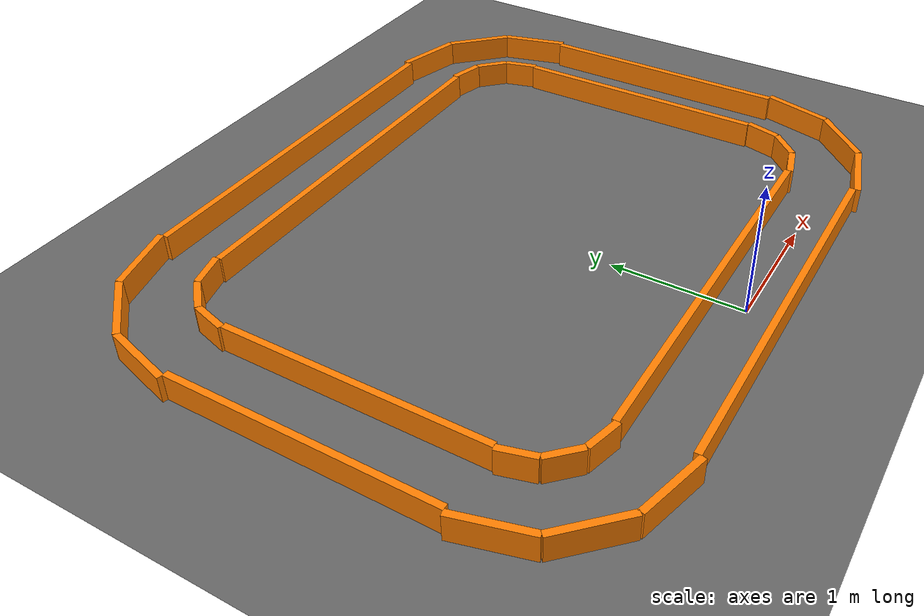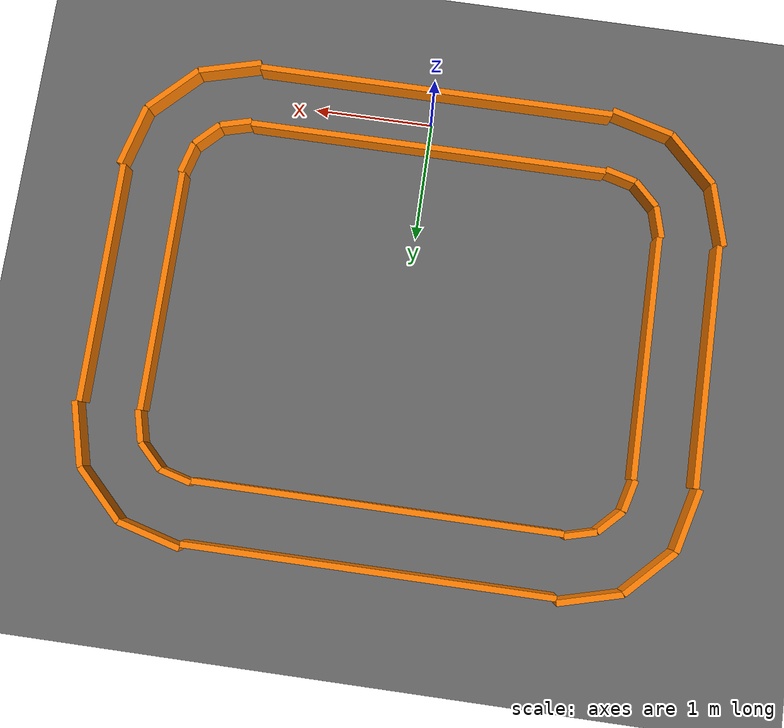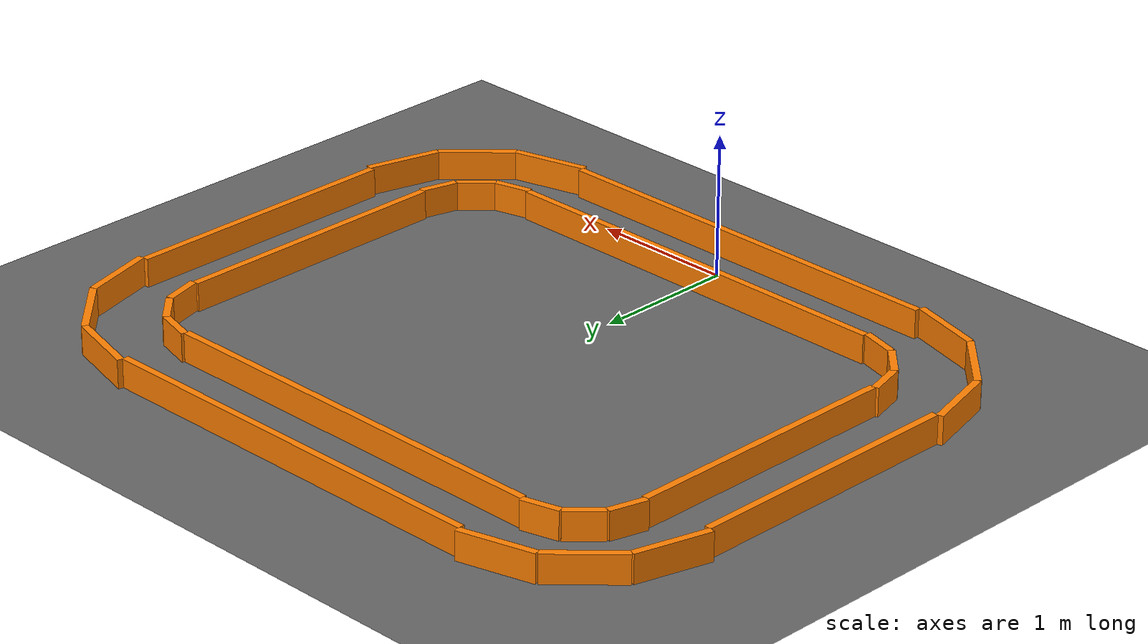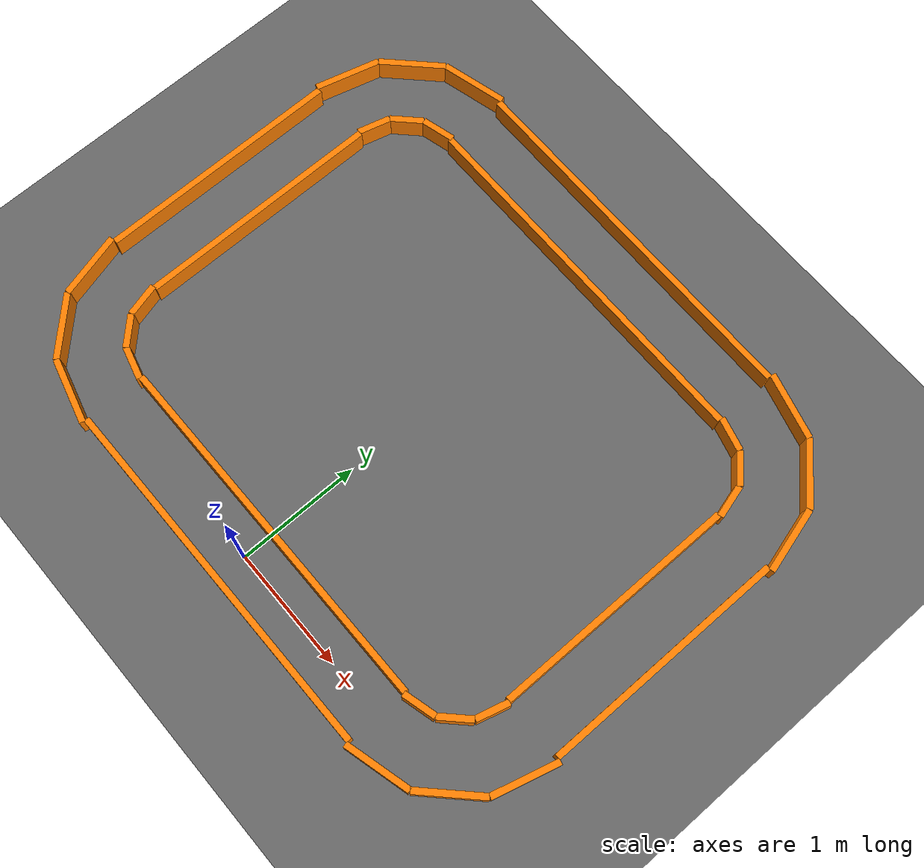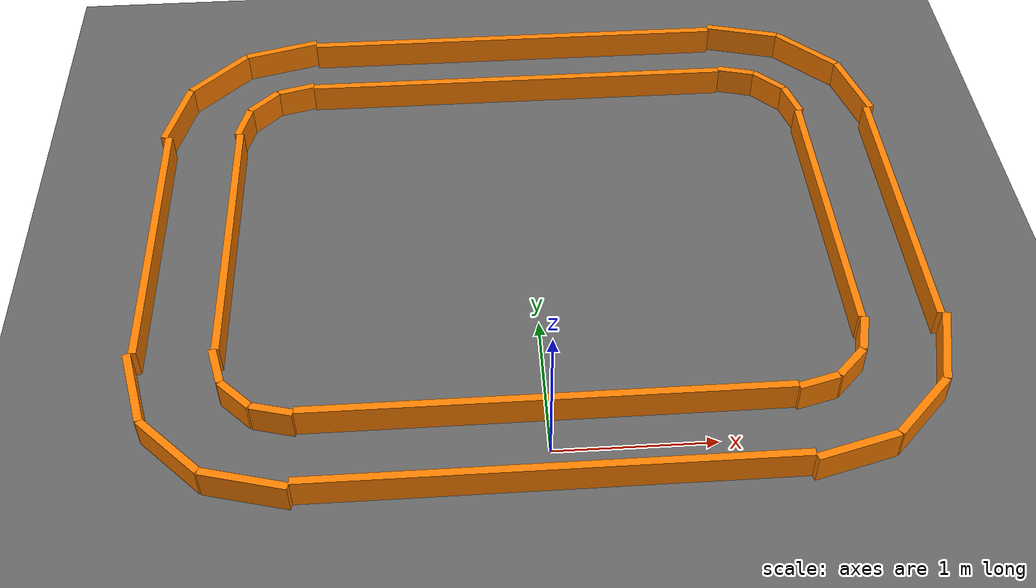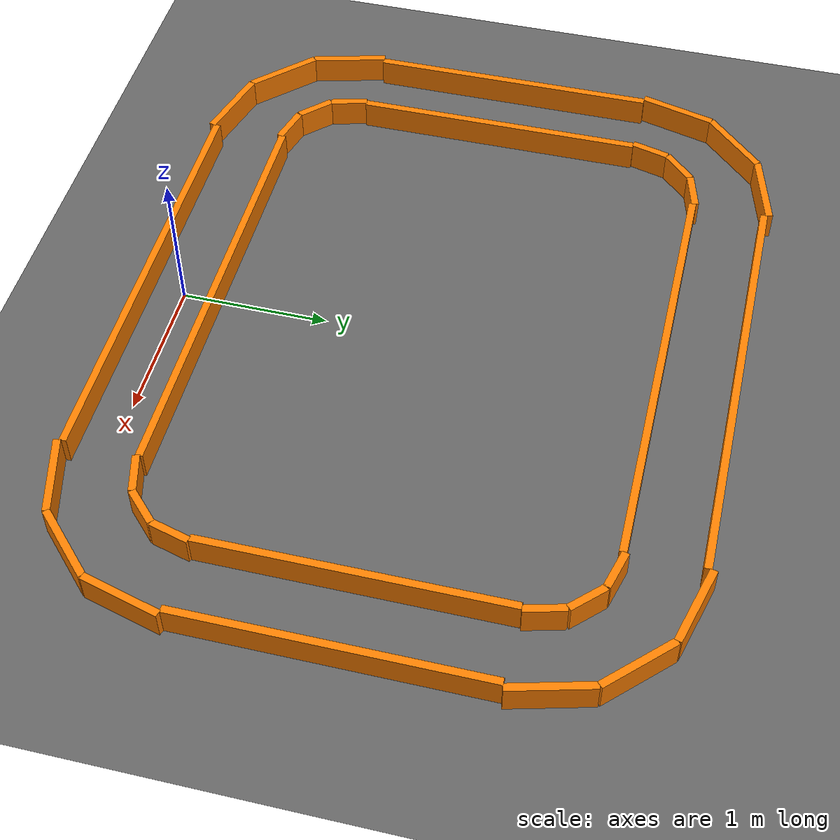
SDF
<?xml version="1.0" ?>
<sdf version="1.9">
  <world name="city_track">
    <!-- Required Physics and Render Plugins for Modern Gazebo -->
    <physics name="1ms" type="ignored">
      <max_step_size>0.001</max_step_size>
      <real_time_factor>1.0</real_time_factor>
    </physics>
    <plugin filename="gz-sim-physics-system" name="gz::sim::systems::Physics" />
    <plugin filename="gz-sim-user-commands-system" name="gz::sim::systems::UserCommands" />
    <plugin filename="gz-sim-scene-broadcaster-system" name="gz::sim::systems::SceneBroadcaster" />

    <light type="directional" name="sun">
      <cast_shadows>true</cast_shadows>
      <pose>0 3.5 10 0 0 0</pose>
      <diffuse>0.8 0.8 0.8 1</diffuse>
      <specular>0.2 0.2 0.2 1</specular>
      <direction>-0.5 0.1 -0.9</direction>
    </light>

    <model name="ground_plane">
      <static>true</static>
      <link name="link">
        <collision name="collision">
          <geometry><plane><normal>0 0 1</normal><size>20 20</size></plane></geometry>
        </collision>
        <visual name="visual">
          <geometry><plane><normal>0 0 1</normal><size>20 20</size></plane></geometry>
          <material>
            <ambient>0.4 0.4 0.4 1</ambient>
            <diffuse>0.4 0.4 0.4 1</diffuse>
          </material>
        </visual>
      </link>
    </model>

    <!-- Track 03: City Track (5m x 4m Outer, 4m x 3m Inner) -->
    <!-- SHIFTED: All Y coords += 1.75 so vehicle starts at (0, 0) on bottom straight (CCW left turns) -->
    <model name="city_track_map">
      <static>true</static>

      <!-- ================= STRAIGHT SECTIONS ================= -->

      <!-- Top and Bottom Straights (Length: 3m) -->
      <!-- Original: top_outer Y=2.0, top_inner Y=1.5, bottom_outer Y=-2.0, bottom_inner Y=-1.5 -->
      <!-- Shifted:  bottom_outer Y=-0.25, bottom_inner Y=0.25, top_outer Y=3.75, top_inner Y=3.25 -->
      <link name="top_outer"><pose>0 3.75 0.1 0 0 0</pose><visual name="v"><geometry><box><size>3.0 0.05 0.2</size></box></geometry><material><ambient>1 0.5 0 1</ambient></material></visual><collision name="c"><geometry><box><size>3.0 0.05 0.2</size></box></geometry></collision></link>
      <link name="top_inner"><pose>0 3.25 0.1 0 0 0</pose><visual name="v"><geometry><box><size>3.0 0.05 0.2</size></box></geometry><material><ambient>1 0.5 0 1</ambient></material></visual><collision name="c"><geometry><box><size>3.0 0.05 0.2</size></box></geometry></collision></link>

      <link name="bottom_outer"><pose>0 -0.25 0.1 0 0 0</pose><visual name="v"><geometry><box><size>3.0 0.05 0.2</size></box></geometry><material><ambient>1 0.5 0 1</ambient></material></visual><collision name="c"><geometry><box><size>3.0 0.05 0.2</size></box></geometry></collision></link>
      <link name="bottom_inner"><pose>0 0.25 0.1 0 0 0</pose><visual name="v"><geometry><box><size>3.0 0.05 0.2</size></box></geometry><material><ambient>1 0.5 0 1</ambient></material></visual><collision name="c"><geometry><box><size>3.0 0.05 0.2</size></box></geometry></collision></link>

      <!-- Left and Right Straights (Length: 2m) -->
      <!-- Original: Y=0, Shifted: Y=1.75 -->
      <link name="right_outer"><pose>2.5 1.75 0.1 0 0 1.5708</pose><visual name="v"><geometry><box><size>2.0 0.05 0.2</size></box></geometry><material><ambient>1 0.5 0 1</ambient></material></visual><collision name="c"><geometry><box><size>2.0 0.05 0.2</size></box></geometry></collision></link>
      <link name="right_inner"><pose>2.0 1.75 0.1 0 0 1.5708</pose><visual name="v"><geometry><box><size>2.0 0.05 0.2</size></box></geometry><material><ambient>1 0.5 0 1</ambient></material></visual><collision name="c"><geometry><box><size>2.0 0.05 0.2</size></box></geometry></collision></link>

      <link name="left_outer"><pose>-2.5 1.75 0.1 0 0 1.5708</pose><visual name="v"><geometry><box><size>2.0 0.05 0.2</size></box></geometry><material><ambient>1 0.5 0 1</ambient></material></visual><collision name="c"><geometry><box><size>2.0 0.05 0.2</size></box></geometry></collision></link>
      <link name="left_inner"><pose>-2.0 1.75 0.1 0 0 1.5708</pose><visual name="v"><geometry><box><size>2.0 0.05 0.2</size></box></geometry><material><ambient>1 0.5 0 1</ambient></material></visual><collision name="c"><geometry><box><size>2.0 0.05 0.2</size></box></geometry></collision></link>

      <!-- ================= CORNER CURVATURES ================= -->
      <!-- Approximated using 3 segments per 90-degree corner -->
      <!-- All Y coords shifted by +1.75 -->

      <!-- Top-Right Corner -->
      <!-- Outer Radius: 100cm -->
      <link name="tr_o1"><pose>2.466 3.009 0.1 0 0 1.832</pose><visual name="v"><geometry><box><size>0.536 0.05 0.2</size></box></geometry><material><ambient>1 0.5 0 1</ambient></material></visual><collision name="c"><geometry><box><size>0.536 0.05 0.2</size></box></geometry></collision></link>
      <link name="tr_o2"><pose>2.207 3.457 0.1 0 0 2.356</pose><visual name="v"><geometry><box><size>0.536 0.05 0.2</size></box></geometry><material><ambient>1 0.5 0 1</ambient></material></visual><collision name="c"><geometry><box><size>0.536 0.05 0.2</size></box></geometry></collision></link>
      <link name="tr_o3"><pose>1.759 3.716 0.1 0 0 2.879</pose><visual name="v"><geometry><box><size>0.536 0.05 0.2</size></box></geometry><material><ambient>1 0.5 0 1</ambient></material></visual><collision name="c"><geometry><box><size>0.536 0.05 0.2</size></box></geometry></collision></link>
      <!-- Inner Radius: 50cm -->
      <link name="tr_i1"><pose>1.983 2.879 0.1 0 0 1.832</pose><visual name="v"><geometry><box><size>0.268 0.05 0.2</size></box></geometry><material><ambient>1 0.5 0 1</ambient></material></visual><collision name="c"><geometry><box><size>0.268 0.05 0.2</size></box></geometry></collision></link>
      <link name="tr_i2"><pose>1.854 3.104 0.1 0 0 2.356</pose><visual name="v"><geometry><box><size>0.268 0.05 0.2</size></box></geometry><material><ambient>1 0.5 0 1</ambient></material></visual><collision name="c"><geometry><box><size>0.268 0.05 0.2</size></box></geometry></collision></link>
      <link name="tr_i3"><pose>1.629 3.233 0.1 0 0 2.879</pose><visual name="v"><geometry><box><size>0.268 0.05 0.2</size></box></geometry><material><ambient>1 0.5 0 1</ambient></material></visual><collision name="c"><geometry><box><size>0.268 0.05 0.2</size></box></geometry></collision></link>

      <!-- Top-Left Corner -->
      <!-- Outer -->
      <link name="tl_o1"><pose>-2.466 3.009 0.1 0 0 1.309</pose><visual name="v"><geometry><box><size>0.536 0.05 0.2</size></box></geometry><material><ambient>1 0.5 0 1</ambient></material></visual><collision name="c"><geometry><box><size>0.536 0.05 0.2</size></box></geometry></collision></link>
      <link name="tl_o2"><pose>-2.207 3.457 0.1 0 0 0.785</pose><visual name="v"><geometry><box><size>0.536 0.05 0.2</size></box></geometry><material><ambient>1 0.5 0 1</ambient></material></visual><collision name="c"><geometry><box><size>0.536 0.05 0.2</size></box></geometry></collision></link>
      <link name="tl_o3"><pose>-1.759 3.716 0.1 0 0 0.262</pose><visual name="v"><geometry><box><size>0.536 0.05 0.2</size></box></geometry><material><ambient>1 0.5 0 1</ambient></material></visual><collision name="c"><geometry><box><size>0.536 0.05 0.2</size></box></geometry></collision></link>
      <!-- Inner -->
      <link name="tl_i1"><pose>-1.983 2.879 0.1 0 0 1.309</pose><visual name="v"><geometry><box><size>0.268 0.05 0.2</size></box></geometry><material><ambient>1 0.5 0 1</ambient></material></visual><collision name="c"><geometry><box><size>0.268 0.05 0.2</size></box></geometry></collision></link>
      <link name="tl_i2"><pose>-1.854 3.104 0.1 0 0 0.785</pose><visual name="v"><geometry><box><size>0.268 0.05 0.2</size></box></geometry><material><ambient>1 0.5 0 1</ambient></material></visual><collision name="c"><geometry><box><size>0.268 0.05 0.2</size></box></geometry></collision></link>
      <link name="tl_i3"><pose>-1.629 3.233 0.1 0 0 0.262</pose><visual name="v"><geometry><box><size>0.268 0.05 0.2</size></box></geometry><material><ambient>1 0.5 0 1</ambient></material></visual><collision name="c"><geometry><box><size>0.268 0.05 0.2</size></box></geometry></collision></link>

      <!-- Bottom-Left Corner -->
      <!-- Outer -->
      <link name="bl_o1"><pose>-2.466 0.491 0.1 0 0 -1.309</pose><visual name="v"><geometry><box><size>0.536 0.05 0.2</size></box></geometry><material><ambient>1 0.5 0 1</ambient></material></visual><collision name="c"><geometry><box><size>0.536 0.05 0.2</size></box></geometry></collision></link>
      <link name="bl_o2"><pose>-2.207 0.043 0.1 0 0 -0.785</pose><visual name="v"><geometry><box><size>0.536 0.05 0.2</size></box></geometry><material><ambient>1 0.5 0 1</ambient></material></visual><collision name="c"><geometry><box><size>0.536 0.05 0.2</size></box></geometry></collision></link>
      <link name="bl_o3"><pose>-1.759 -0.216 0.1 0 0 -0.262</pose><visual name="v"><geometry><box><size>0.536 0.05 0.2</size></box></geometry><material><ambient>1 0.5 0 1</ambient></material></visual><collision name="c"><geometry><box><size>0.536 0.05 0.2</size></box></geometry></collision></link>
      <!-- Inner -->
      <link name="bl_i1"><pose>-1.983 0.621 0.1 0 0 -1.309</pose><visual name="v"><geometry><box><size>0.268 0.05 0.2</size></box></geometry><material><ambient>1 0.5 0 1</ambient></material></visual><collision name="c"><geometry><box><size>0.268 0.05 0.2</size></box></geometry></collision></link>
      <link name="bl_i2"><pose>-1.854 0.396 0.1 0 0 -0.785</pose><visual name="v"><geometry><box><size>0.268 0.05 0.2</size></box></geometry><material><ambient>1 0.5 0 1</ambient></material></visual><collision name="c"><geometry><box><size>0.268 0.05 0.2</size></box></geometry></collision></link>
      <link name="bl_i3"><pose>-1.629 0.267 0.1 0 0 -0.262</pose><visual name="v"><geometry><box><size>0.268 0.05 0.2</size></box></geometry><material><ambient>1 0.5 0 1</ambient></material></visual><collision name="c"><geometry><box><size>0.268 0.05 0.2</size></box></geometry></collision></link>

      <!-- Bottom-Right Corner -->
      <!-- Outer -->
      <link name="br_o1"><pose>2.466 0.491 0.1 0 0 -1.832</pose><visual name="v"><geometry><box><size>0.536 0.05 0.2</size></box></geometry><material><ambient>1 0.5 0 1</ambient></material></visual><collision name="c"><geometry><box><size>0.536 0.05 0.2</size></box></geometry></collision></link>
      <link name="br_o2"><pose>2.207 0.043 0.1 0 0 -2.356</pose><visual name="v"><geometry><box><size>0.536 0.05 0.2</size></box></geometry><material><ambient>1 0.5 0 1</ambient></material></visual><collision name="c"><geometry><box><size>0.536 0.05 0.2</size></box></geometry></collision></link>
      <link name="br_o3"><pose>1.759 -0.216 0.1 0 0 -2.879</pose><visual name="v"><geometry><box><size>0.536 0.05 0.2</size></box></geometry><material><ambient>1 0.5 0 1</ambient></material></visual><collision name="c"><geometry><box><size>0.536 0.05 0.2</size></box></geometry></collision></link>
      <!-- Inner -->
      <link name="br_i1"><pose>1.983 0.621 0.1 0 0 -1.832</pose><visual name="v"><geometry><box><size>0.268 0.05 0.2</size></box></geometry><material><ambient>1 0.5 0 1</ambient></material></visual><collision name="c"><geometry><box><size>0.268 0.05 0.2</size></box></geometry></collision></link>
      <link name="br_i2"><pose>1.854 0.396 0.1 0 0 -2.356</pose><visual name="v"><geometry><box><size>0.268 0.05 0.2</size></box></geometry><material><ambient>1 0.5 0 1</ambient></material></visual><collision name="c"><geometry><box><size>0.268 0.05 0.2</size></box></geometry></collision></link>
      <link name="br_i3"><pose>1.629 0.267 0.1 0 0 -2.879</pose><visual name="v"><geometry><box><size>0.268 0.05 0.2</size></box></geometry><material><ambient>1 0.5 0 1</ambient></material></visual><collision name="c"><geometry><box><size>0.268 0.05 0.2</size></box></geometry></collision></link>

    </model>
  </world>
</sdf>
